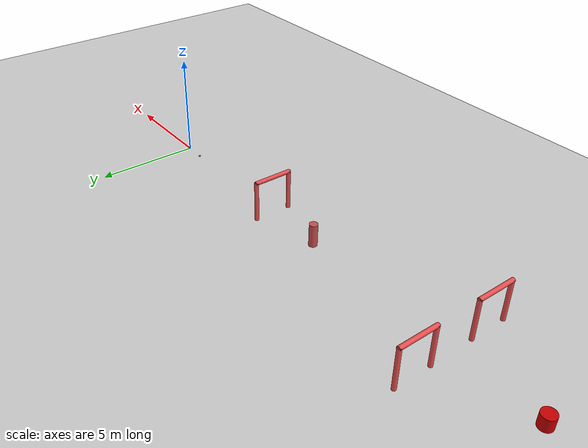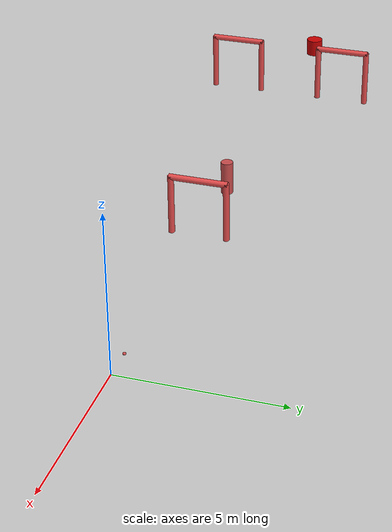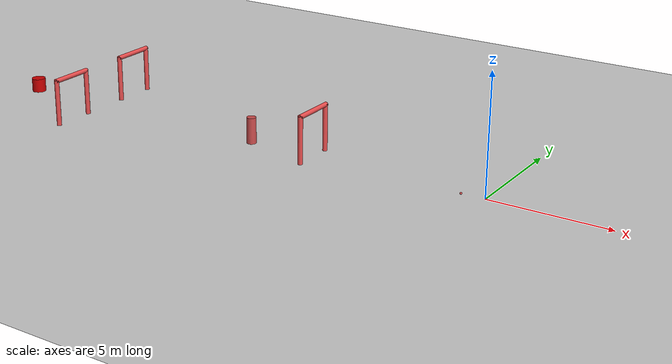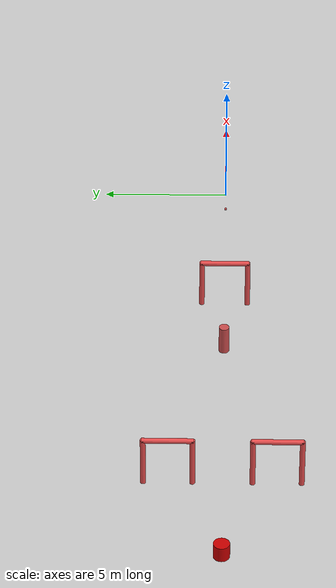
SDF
<sdf version="1.7">
 <world name="default">
  <plugin name="ros_link_attacher_plugin" filename="libgazebo_ros_link_attacher.so"/>
  <light name="sun" type="directional">
   <pose>0 0 10 0 -0 0</pose>
   <diffuse>0.8 0.8 0.8 1</diffuse>
   <specular>0.2 0.2 0.2 1</specular>
   <attenuation>
    <range>1000</range>
    <constant>0.9</constant>
    <linear>0.01</linear>
    <quadratic>0.001</quadratic>
   </attenuation>
   <direction>-0.5 0.1 -0.9</direction>
   <spot><inner_angle>0</inner_angle><outer_angle>0</outer_angle><falloff>0</falloff></spot>
  </light>
  <model name="ground_plane">
   <static>1</static>
   <link name="link">
    <collision name="collision">
     <geometry><plane><normal>0 0 1</normal><size>100 100</size></plane></geometry>
     <surface>
      <contact><collide_bitmask>65535</collide_bitmask></contact>
      <friction><ode><mu>100</mu><mu2>50</mu2></ode></friction>
     </surface>
    </collision>
    <visual name="visual">
     <cast_shadows>0</cast_shadows>
     <geometry><plane><normal>0 0 1</normal><size>100 100</size></plane></geometry>
     <material>
      <script><uri>file://media/materials/scripts/gazebo.material</uri><name>Gazebo/Grey</name></script>
     </material>
    </visual>
   </link>
  </model>
  <gravity>0 0 -9.8</gravity>
  <magnetic_field>6e-06 2.3e-05 -4.2e-05</magnetic_field>
  <atmosphere type="adiabatic"/>
  <physics type="ode">
   <max_step_size>0.001</max_step_size>
   <real_time_factor>1</real_time_factor>
   <real_time_update_rate>1000</real_time_update_rate>
  </physics>
  <scene><ambient>0.4 0.4 0.4 1</ambient><background>0.7 0.7 0.7 1</background><shadows>1</shadows></scene>
  <spherical_coordinates>
   <surface_model>EARTH_WGS84</surface_model>
   <latitude_deg>0</latitude_deg>
   <longitude_deg>0</longitude_deg>
   <elevation>0</elevation>
   <heading_deg>0</heading_deg>
  </spherical_coordinates>
  <model name="gate">
   <include><uri>model://gate</uri></include>
   <static>1</static>
   <pose>-7.6 0 1 0 0 0</pose>
  </model>
  <model name="gate_2">
   <include><uri>model://gate</uri></include>
   <static>1</static>
   <pose>-18.6 -2 1 0 0 0</pose>
  </model>
  <model name="target">
   <include><uri>model://target</uri></include>
   <static>1</static>
   <pose>-22.6 0 0 0 0 0</pose>
  </model>
  <model name="gate_3">
   <include><uri>model://gate</uri></include>
   <static>1</static>
   <pose>-18.6 2 1 0 0 0</pose>
  </model>
  <model name="obstacle">
   <include><uri>model://obstacle</uri></include>
   <static>1</static>
   <pose>-10.6 0 0.5 0 0 0</pose>
  </model>
  <model name="ball">
   <pose>-1 0 0 0 -0 0</pose>
   <link name="link">
    <inertial>
     <mass>0.046</mass>
     <inertia>
      <ixx>0.00000736</ixx>
      <ixy>0</ixy>
      <ixz>0</ixz>
      <iyy>0.00000736</iyy>
      <iyz>0</iyz>
      <izz>0.00000736</izz>
     </inertia>
    </inertial>
    <visual name="visual">
     <geometry><sphere><radius>0.05</radius></sphere></geometry>
     <material>
      <script><name>Gazebo/Grey</name><uri>file://media/materials/scripts/gazebo.material</uri></script>
      <shader type="pixel"><normal_map>__default__</normal_map></shader>
      <ambient>0.8 0.3 0.3 1</ambient>
      <diffuse>0.7 0.7 0.7 1</diffuse>
      <specular>0.01 0.01 0.01 1</specular>
      <emissive>0 0 0 1</emissive>
     </material>
    </visual>
    <collision name="collision"><geometry><sphere><radius>0.05</radius></sphere></geometry></collision>
   </link>
   <static>0</static>
  </model>
 </world>
</sdf>

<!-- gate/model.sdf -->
<sdf version='1.7'>
  <model name='gate'>
    <link name='link_0'>
      <inertial>
        <mass>1</mass>
        <inertia>
          <ixx>0.145833</ixx>
          <ixy>0</ixy>
          <ixz>0</ixz>
          <iyy>0.145833</iyy>
          <iyz>0</iyz>
          <izz>0.125</izz>
        </inertia>
        <pose>0 0 0 0 -0 0</pose>
      </inertial>
      <pose>-0 -0.9 0 0 -0 0</pose>
      <gravity>1</gravity>
      <self_collide>0</self_collide>
      <kinematic>0</kinematic>
      <enable_wind>0</enable_wind>
      <visual name='visual'>
        <pose>0 0 0 0 -0 0</pose>
        <geometry>
          <cylinder>
            <radius>0.1</radius>
            <length>2</length>
          </cylinder>
        </geometry>
        <material>
          <lighting>1</lighting>
          <script>
            <uri>file://media/materials/scripts/gazebo.material</uri>
            <name>Gazebo/Grey</name>
          </script>
          <shader type='pixel'>
            <normal_map>__default__</normal_map>
          </shader>
          <ambient>0.9 0.3 0.3 1</ambient>
          <diffuse>0.7 0.7 0.7 1</diffuse>
          <specular>0.01 0.01 0.01 1</specular>
          <emissive>0 0 0 1</emissive>
        </material>
        <transparency>0</transparency>
        <cast_shadows>1</cast_shadows>
      </visual>
      <collision name='collision'>
        <laser_retro>0</laser_retro>
        <max_contacts>10</max_contacts>
        <pose>0 0 0 0 -0 0</pose>
        <geometry>
          <cylinder>
            <radius>0.1</radius>
            <length>2</length>
          </cylinder>
        </geometry>
        <surface>
          <friction>
            <ode>
              <mu>1</mu>
              <mu2>1</mu2>
              <fdir1>0 0 0</fdir1>
              <slip1>0</slip1>
              <slip2>0</slip2>
            </ode>
            <torsional>
              <coefficient>1</coefficient>
              <patch_radius>0</patch_radius>
              <surface_radius>0</surface_radius>
              <use_patch_radius>1</use_patch_radius>
              <ode>
                <slip>0</slip>
              </ode>
            </torsional>
          </friction>
          <bounce>
            <restitution_coefficient>0</restitution_coefficient>
            <threshold>1e+06</threshold>
          </bounce>
          <contact>
            <collide_without_contact>0</collide_without_contact>
            <collide_without_contact_bitmask>1</collide_without_contact_bitmask>
            <collide_bitmask>1</collide_bitmask>
            <ode>
              <soft_cfm>0</soft_cfm>
              <soft_erp>0.2</soft_erp>
              <kp>1e+13</kp>
              <kd>1</kd>
              <max_vel>0.01</max_vel>
              <min_depth>0</min_depth>
            </ode>
            <bullet>
              <split_impulse>1</split_impulse>
              <split_impulse_penetration_threshold>-0.01</split_impulse_penetration_threshold>
              <soft_cfm>0</soft_cfm>
              <soft_erp>0.2</soft_erp>
              <kp>1e+13</kp>
              <kd>1</kd>
            </bullet>
          </contact>
        </surface>
      </collision>
    </link>
    <link name='link_0_clone'>
      <inertial>
        <mass>1</mass>
        <inertia>
          <ixx>0.145833</ixx>
          <ixy>0</ixy>
          <ixz>0</ixz>
          <iyy>0.145833</iyy>
          <iyz>0</iyz>
          <izz>0.125</izz>
        </inertia>
        <pose>0 0 0 0 -0 0</pose>
      </inertial>
      <pose>0 0.9 -0 0 -0 0</pose>
      <gravity>1</gravity>
      <self_collide>0</self_collide>
      <kinematic>0</kinematic>
      <enable_wind>0</enable_wind>
      <visual name='visual'>
        <pose>0 0 0 0 -0 0</pose>
        <geometry>
          <cylinder>
            <radius>0.1</radius>
            <length>2</length>
          </cylinder>
        </geometry>
        <material>
          <lighting>1</lighting>
          <script>
            <uri>file://media/materials/scripts/gazebo.material</uri>
            <name>Gazebo/Grey</name>
          </script>
          <shader type='pixel'>
            <normal_map>__default__</normal_map>
          </shader>
          <ambient>0.9 0.3 0.3 1</ambient>
          <diffuse>0.7 0.7 0.7 1</diffuse>
          <specular>0.01 0.01 0.01 1</specular>
          <emissive>0 0 0 1</emissive>
        </material>
        <transparency>0</transparency>
        <cast_shadows>1</cast_shadows>
      </visual>
      <collision name='collision'>
        <laser_retro>0</laser_retro>
        <max_contacts>10</max_contacts>
        <pose>0 0 0 0 -0 0</pose>
        <geometry>
          <cylinder>
            <radius>0.1</radius>
            <length>2</length>
          </cylinder>
        </geometry>
        <surface>
          <friction>
            <ode>
              <mu>1</mu>
              <mu2>1</mu2>
              <fdir1>0 0 0</fdir1>
              <slip1>0</slip1>
              <slip2>0</slip2>
            </ode>
            <torsional>
              <coefficient>1</coefficient>
              <patch_radius>0</patch_radius>
              <surface_radius>0</surface_radius>
              <use_patch_radius>1</use_patch_radius>
              <ode>
                <slip>0</slip>
              </ode>
            </torsional>
          </friction>
          <bounce>
            <restitution_coefficient>0</restitution_coefficient>
            <threshold>1e+06</threshold>
          </bounce>
          <contact>
            <collide_without_contact>0</collide_without_contact>
            <collide_without_contact_bitmask>1</collide_without_contact_bitmask>
            <collide_bitmask>1</collide_bitmask>
            <ode>
              <soft_cfm>0</soft_cfm>
              <soft_erp>0.2</soft_erp>
              <kp>1e+13</kp>
              <kd>1</kd>
              <max_vel>0.01</max_vel>
              <min_depth>0</min_depth>
            </ode>
            <bullet>
              <split_impulse>1</split_impulse>
              <split_impulse_penetration_threshold>-0.01</split_impulse_penetration_threshold>
              <soft_cfm>0</soft_cfm>
              <soft_erp>0.2</soft_erp>
              <kp>1e+13</kp>
              <kd>1</kd>
            </bullet>
          </contact>
        </surface>
      </collision>
    </link>
    <link name='link_0_clone_0'>
      <inertial>
        <mass>1</mass>
        <inertia>
          <ixx>0.145833</ixx>
          <ixy>0</ixy>
          <ixz>0</ixz>
          <iyy>0.145833</iyy>
          <iyz>0</iyz>
          <izz>0.125</izz>
        </inertia>
        <pose>0 0 0 0 -0 0</pose>
      </inertial>
      <pose>0 2.9e-05 0.964781 1.5707 -0 0</pose>
      <gravity>1</gravity>
      <self_collide>0</self_collide>
      <kinematic>0</kinematic>
      <enable_wind>0</enable_wind>
      <visual name='visual'>
        <pose>0 0 0 0 -0 0</pose>
        <geometry>
          <cylinder>
            <radius>0.1</radius>
            <length>1.9</length>
          </cylinder>
        </geometry>
        <material>
          <lighting>1</lighting>
          <script>
            <uri>file://media/materials/scripts/gazebo.material</uri>
            <name>Gazebo/Grey</name>
          </script>
          <shader type='pixel'>
            <normal_map>__default__</normal_map>
          </shader>
          <ambient>0.9 0.3 0.3 1</ambient>
          <diffuse>0.7 0.7 0.7 1</diffuse>
          <specular>0.01 0.01 0.01 1</specular>
          <emissive>0 0 0 1</emissive>
        </material>
        <transparency>0</transparency>
        <cast_shadows>1</cast_shadows>
      </visual>
      <collision name='collision'>
        <laser_retro>0</laser_retro>
        <max_contacts>10</max_contacts>
        <pose>0 0 0 0 -0 0</pose>
        <geometry>
          <cylinder>
            <radius>0.1</radius>
            <length>1.9</length>
          </cylinder>
        </geometry>
        <surface>
          <friction>
            <ode>
              <mu>1</mu>
              <mu2>1</mu2>
              <fdir1>0 0 0</fdir1>
              <slip1>0</slip1>
              <slip2>0</slip2>
            </ode>
            <torsional>
              <coefficient>1</coefficient>
              <patch_radius>0</patch_radius>
              <surface_radius>0</surface_radius>
              <use_patch_radius>1</use_patch_radius>
              <ode>
                <slip>0</slip>
              </ode>
            </torsional>
          </friction>
          <bounce>
            <restitution_coefficient>0</restitution_coefficient>
            <threshold>1e+06</threshold>
          </bounce>
          <contact>
            <collide_without_contact>0</collide_without_contact>
            <collide_without_contact_bitmask>1</collide_without_contact_bitmask>
            <collide_bitmask>1</collide_bitmask>
            <ode>
              <soft_cfm>0</soft_cfm>
              <soft_erp>0.2</soft_erp>
              <kp>1e+13</kp>
              <kd>1</kd>
              <max_vel>0.01</max_vel>
              <min_depth>0</min_depth>
            </ode>
            <bullet>
              <split_impulse>1</split_impulse>
              <split_impulse_penetration_threshold>-0.01</split_impulse_penetration_threshold>
              <soft_cfm>0</soft_cfm>
              <soft_erp>0.2</soft_erp>
              <kp>1e+13</kp>
              <kd>1</kd>
            </bullet>
          </contact>
        </surface>
      </collision>
    </link>
    <joint name='link_0_JOINT_0' type='fixed'>
      <parent>link_0</parent>
      <child>link_0_clone_0</child>
      <pose>0 0 0 0 -0 0</pose>
      <physics>
        <ode>
          <limit>
            <cfm>0</cfm>
            <erp>0.2</erp>
          </limit>
          <suspension>
            <cfm>0</cfm>
            <erp>0.2</erp>
          </suspension>
        </ode>
      </physics>
    </joint>
    <joint name='link_0_clone_JOINT_1' type='fixed'>
      <parent>link_0_clone</parent>
      <child>link_0_clone_0</child>
      <pose>0 0 0 0 -0 0</pose>
      <physics>
        <ode>
          <limit>
            <cfm>0</cfm>
            <erp>0.2</erp>
          </limit>
          <suspension>
            <cfm>0</cfm>
            <erp>0.2</erp>
          </suspension>
        </ode>
      </physics>
    </joint>
    <static>1</static>
    <allow_auto_disable>1</allow_auto_disable>
  </model>
</sdf>

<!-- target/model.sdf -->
<sdf version="1.5">
  <model name="VTOL1">
    <pose>0 0 0  0 0 0</pose>
    <static>true</static>
    <link name="link">
      <inertial>
        <mass>0.01</mass>
        <inertia>
          <ixx>1</ixx>
          <ixy>0</ixy>
          <ixz>0</ixz>
          <iyy>1</iyy>
          <iyz>0</iyz>
          <izz>1</izz>
        </inertia>
      </inertial>

      <collision name="collision">
        <geometry>
          <mesh>
            <uri>model://target/meshes/target-vtol-2023.dae</uri>
            <scale> 2 2 2</scale>
          </mesh>
        </geometry>
      </collision>
      <visual name="visual">
        <geometry>
          <mesh>
            <uri>model://target/meshes/target-vtol-2023.dae</uri>
            <scale> 2 2 2</scale>
          </mesh>
	      </geometry>
      </visual>
    </link>
  </model>
</sdf>

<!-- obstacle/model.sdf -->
<sdf version='1.7'>
  <model name='obstacle'>
    <link name='link'>
      <inertial>
        <mass>1</mass>
        <inertia>
          <ixx>0.145833</ixx>
          <ixy>0</ixy>
          <ixz>0</ixz>
          <iyy>0.145833</iyy>
          <iyz>0</iyz>
          <izz>0.125</izz>
        </inertia>
        <pose>0 0 0 0 -0 0</pose>
      </inertial>

      <kinematic>1</kinematic>
      <pose>0 0 0 0 -0 0</pose>

      <visual name='visual'>
        <geometry>
          <cylinder>
            <radius>0.2</radius>
            <length>1.2</length>
          </cylinder>
        </geometry>
        <material>
          <script>
            <name>Gazebo/Grey</name>
            <uri>file://media/materials/scripts/gazebo.material</uri>
          </script>
          <shader type='pixel'>
            <normal_map>__default__</normal_map>
          </shader>
          <ambient>0.8 0.3 0.3 1</ambient>
          <diffuse>0.7 0.7 0.7 1</diffuse>
          <specular>0.01 0.01 0.01 1</specular>
          <emissive>0 0 0 1</emissive>
        </material>
        <pose>0 0 0 0 -0 0</pose>
        <transparency>0</transparency>
        <cast_shadows>1</cast_shadows>
      </visual>
      <collision name='collision'>
        <pose>0 0 0 0 -0 0</pose>
        <geometry>
          <cylinder>
            <radius>0.2</radius>
            <length>1.2</length>
          </cylinder>
        </geometry>
        <surface>
          <friction>
            <ode>
              <mu>1</mu>
              <mu2>1</mu2>
              <fdir1>0 0 0</fdir1>
              <slip1>0</slip1>
              <slip2>0</slip2>
            </ode>
            <torsional>
              <coefficient>1</coefficient>
              <patch_radius>0</patch_radius>
              <surface_radius>0</surface_radius>
              <use_patch_radius>1</use_patch_radius>
              <ode>
                <slip>0</slip>
              </ode>
            </torsional>
          </friction>
          <bounce>
            <restitution_coefficient>0</restitution_coefficient>
            <threshold>1e+06</threshold>
          </bounce>
          <contact>
            <collide_without_contact>0</collide_without_contact>
            <collide_without_contact_bitmask>1</collide_without_contact_bitmask>
            <collide_bitmask>1</collide_bitmask>
            <ode>
              <soft_cfm>0</soft_cfm>
              <soft_erp>0.2</soft_erp>
              <kp>1e+13</kp>
              <kd>1</kd>
              <max_vel>0.01</max_vel>
              <min_depth>0</min_depth>
            </ode>
            <bullet>
              <split_impulse>1</split_impulse>
              <split_impulse_penetration_threshold>-0.01</split_impulse_penetration_threshold>
              <soft_cfm>0</soft_cfm>
              <soft_erp>0.2</soft_erp>
              <kp>1e+13</kp>
              <kd>1</kd>
            </bullet>
          </contact>
        </surface>
      </collision>
    </link>
    <static>1</static>
    <allow_auto_disable>1</allow_auto_disable>
  </model>
</sdf>
